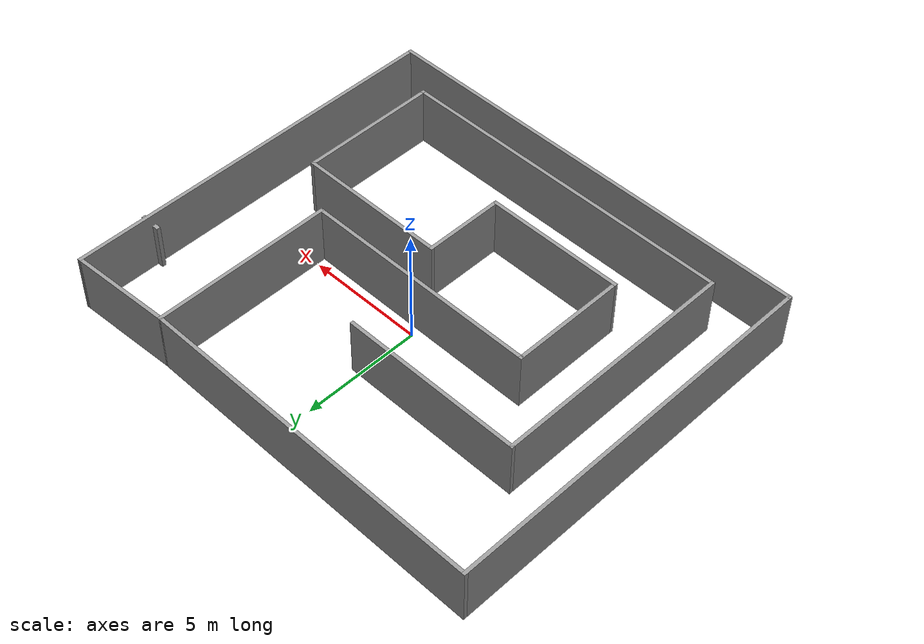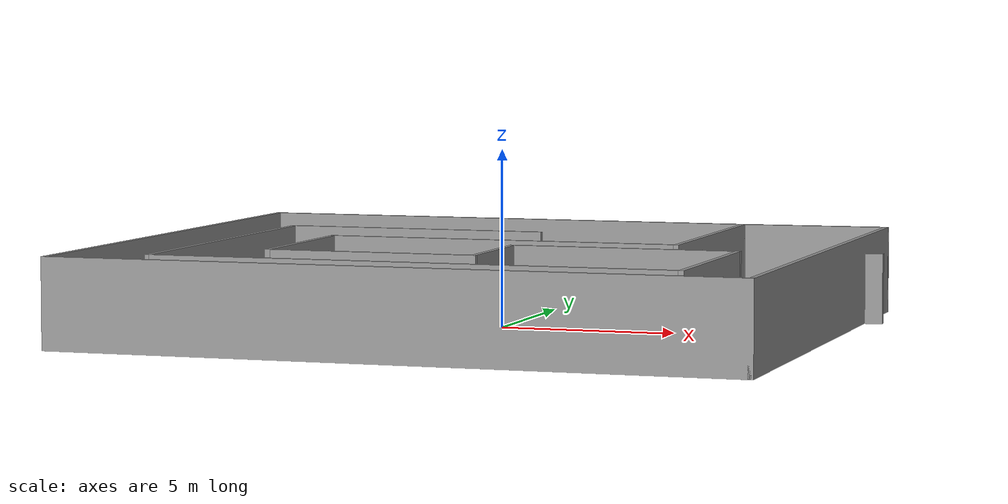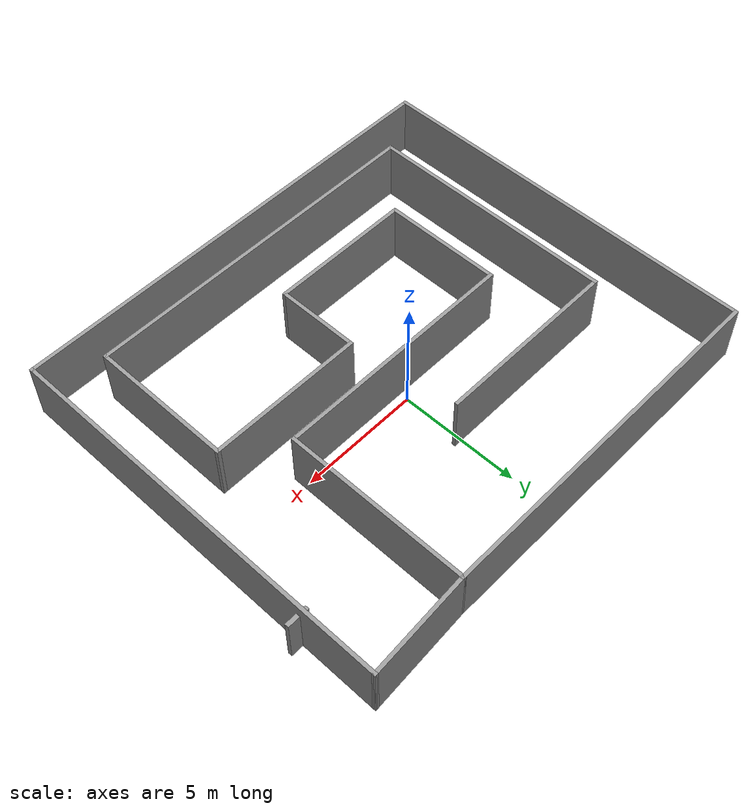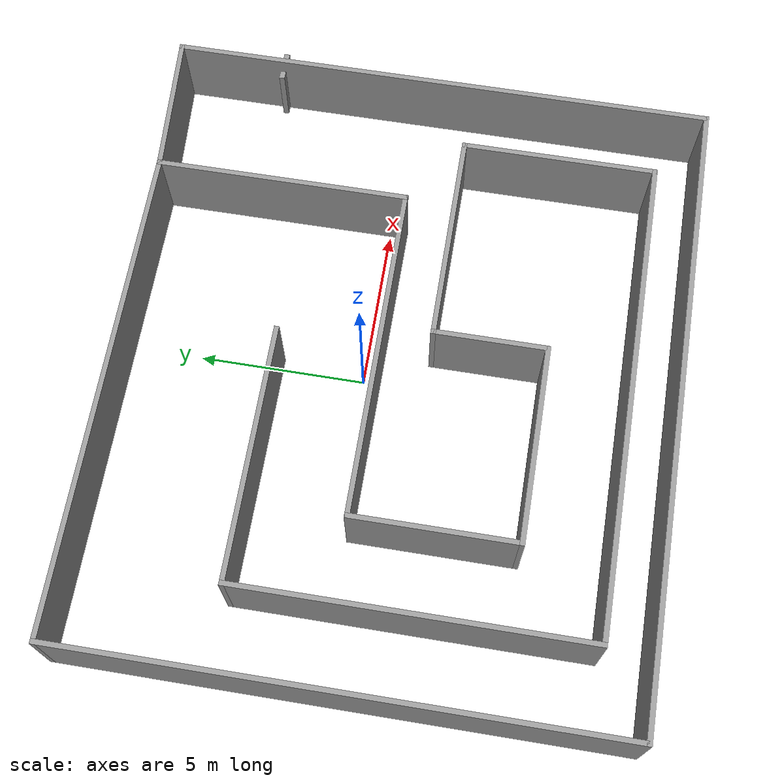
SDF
<?xml version='1.0'?>
<sdf version='1.7'>
  <model name='building.world'>
    <pose>-0.115612 -0.889439 0 0 -0 0</pose>
    <link name='Door_0'>
      <collision name='Door_0_Collision'>
        <geometry>
          <box>
            <size>0.9 0.17 2</size>
          </box>
        </geometry>
        <pose>0 0 1 0 -0 0</pose>
      </collision>
      <visual name='Door_0_Visual'>
        <pose>0 0 1 0 -0 0</pose>
        <geometry>
          <box>
            <size>0.9 0.17 2</size>
          </box>
        </geometry>
        <material>
          <script>
            <uri>file://media/materials/scripts/gazebo.material</uri>
            <name>Gazebo/Grey</name>
          </script>
        </material>
      </visual>
      <pose>9.67468 5.05359 0 0 -0 0</pose>
    </link>
    <link name='Wall_31'>
      <collision name='Wall_31_Collision'>
        <geometry>
          <box>
            <size>7.75 0.15 2.5</size>
          </box>
        </geometry>
        <pose>0 0 1.25 0 -0 0</pose>
      </collision>
      <visual name='Wall_31_Visual'>
        <pose>0 0 1.25 0 -0 0</pose>
        <geometry>
          <box>
            <size>7.75 0.15 2.5</size>
          </box>
        </geometry>
        <material>
          <script>
            <uri>file://media/materials/scripts/gazebo.material</uri>
            <name>Gazebo/Grey</name>
          </script>
          <ambient>1 1 1 1</ambient>
        </material>
        <meta>
          <layer>0</layer>
        </meta>
      </visual>
      <pose>-3.40214 3.44786 0 0 -0 3.14159</pose>
    </link>
    <link name='Wall_32'>
      <collision name='Wall_32_Collision'>
        <geometry>
          <box>
            <size>10.5 0.15 2.5</size>
          </box>
        </geometry>
        <pose>0 0 1.25 0 -0 0</pose>
      </collision>
      <visual name='Wall_32_Visual'>
        <pose>0 0 1.25 0 -0 0</pose>
        <geometry>
          <box>
            <size>10.5 0.15 2.5</size>
          </box>
        </geometry>
        <material>
          <script>
            <uri>file://media/materials/scripts/gazebo.material</uri>
            <name>Gazebo/Grey</name>
          </script>
          <ambient>1 1 1 1</ambient>
        </material>
        <meta>
          <layer>0</layer>
        </meta>
      </visual>
      <pose>-7.20214 -1.72714 0 0 -0 -1.5708</pose>
    </link>
    <link name='Wall_33'>
      <collision name='Wall_33_Collision'>
        <geometry>
          <box>
            <size>14.75 0.15 2.5</size>
          </box>
        </geometry>
        <pose>0 0 1.25 0 -0 0</pose>
      </collision>
      <visual name='Wall_33_Visual'>
        <pose>0 0 1.25 0 -0 0</pose>
        <geometry>
          <box>
            <size>14.75 0.15 2.5</size>
          </box>
        </geometry>
        <material>
          <script>
            <uri>file://media/materials/scripts/gazebo.material</uri>
            <name>Gazebo/Grey</name>
          </script>
          <ambient>1 1 1 1</ambient>
        </material>
        <meta>
          <layer>0</layer>
        </meta>
      </visual>
      <pose>0.097863 -6.90214 0 0 -0 0</pose>
    </link>
    <link name='Wall_34'>
      <collision name='Wall_34_Collision'>
        <geometry>
          <box>
            <size>6 0.15 2.5</size>
          </box>
        </geometry>
        <pose>0 0 1.25 0 -0 0</pose>
      </collision>
      <visual name='Wall_34_Visual'>
        <pose>0 0 1.25 0 -0 0</pose>
        <geometry>
          <box>
            <size>6 0.15 2.5</size>
          </box>
        </geometry>
        <material>
          <script>
            <uri>file://media/materials/scripts/gazebo.material</uri>
            <name>Gazebo/Grey</name>
          </script>
          <ambient>1 1 1 1</ambient>
        </material>
        <meta>
          <layer>0</layer>
        </meta>
      </visual>
      <pose>7.39786 -3.97714 0 0 -0 1.5708</pose>
    </link>
    <link name='Wall_35'>
      <collision name='Wall_35_Collision'>
        <geometry>
          <box>
            <size>6.5 0.15 2.5</size>
          </box>
        </geometry>
        <pose>0 0 1.25 0 -0 0</pose>
      </collision>
      <visual name='Wall_35_Visual'>
        <pose>0 0 1.25 0 -0 0</pose>
        <geometry>
          <box>
            <size>6.5 0.15 2.5</size>
          </box>
        </geometry>
        <material>
          <script>
            <uri>file://media/materials/scripts/gazebo.material</uri>
            <name>Gazebo/Grey</name>
          </script>
          <ambient>1 1 1 1</ambient>
        </material>
        <meta>
          <layer>0</layer>
        </meta>
      </visual>
      <pose>4.22286 -1.05214 0 0 -0 3.14159</pose>
    </link>
    <link name='Wall_36'>
      <collision name='Wall_36_Collision'>
        <geometry>
          <box>
            <size>3.5 0.15 2.5</size>
          </box>
        </geometry>
        <pose>0 0 1.25 0 -0 0</pose>
      </collision>
      <visual name='Wall_36_Visual'>
        <pose>0 0 1.25 0 -0 0</pose>
        <geometry>
          <box>
            <size>3.5 0.15 2.5</size>
          </box>
        </geometry>
        <material>
          <script>
            <uri>file://media/materials/scripts/gazebo.material</uri>
            <name>Gazebo/Grey</name>
          </script>
          <ambient>1 1 1 1</ambient>
        </material>
        <meta>
          <layer>0</layer>
        </meta>
      </visual>
      <pose>1.04786 -2.72714 0 0 -0 -1.5708</pose>
    </link>
    <link name='Wall_37'>
      <collision name='Wall_37_Collision'>
        <geometry>
          <box>
            <size>6 0.15 2.5</size>
          </box>
        </geometry>
        <pose>0 0 1.25 0 -0 0</pose>
      </collision>
      <visual name='Wall_37_Visual'>
        <pose>0 0 1.25 0 -0 0</pose>
        <geometry>
          <box>
            <size>6 0.15 2.5</size>
          </box>
        </geometry>
        <material>
          <script>
            <uri>file://media/materials/scripts/gazebo.material</uri>
            <name>Gazebo/Grey</name>
          </script>
          <ambient>1 1 1 1</ambient>
        </material>
        <meta>
          <layer>0</layer>
        </meta>
      </visual>
      <pose>-1.87714 -4.40214 0 0 -0 3.14159</pose>
    </link>
    <link name='Wall_38'>
      <collision name='Wall_38_Collision'>
        <geometry>
          <box>
            <size>5 0.15 2.5</size>
          </box>
        </geometry>
        <pose>0 0 1.25 0 -0 0</pose>
      </collision>
      <visual name='Wall_38_Visual'>
        <pose>0 0 1.25 0 -0 0</pose>
        <geometry>
          <box>
            <size>5 0.15 2.5</size>
          </box>
        </geometry>
        <material>
          <script>
            <uri>file://media/materials/scripts/gazebo.material</uri>
            <name>Gazebo/Grey</name>
          </script>
          <ambient>1 1 1 1</ambient>
        </material>
        <meta>
          <layer>0</layer>
        </meta>
      </visual>
      <pose>-4.80214 -1.97714 0 0 -0 1.5708</pose>
    </link>
    <link name='Wall_39'>
      <collision name='Wall_39_Collision'>
        <geometry>
          <box>
            <size>10.25 0.15 2.5</size>
          </box>
        </geometry>
        <pose>0 0 1.25 0 -0 0</pose>
      </collision>
      <visual name='Wall_39_Visual'>
        <pose>0 0 1.25 0 -0 0</pose>
        <geometry>
          <box>
            <size>10.25 0.15 2.5</size>
          </box>
        </geometry>
        <material>
          <script>
            <uri>file://media/materials/scripts/gazebo.material</uri>
            <name>Gazebo/Grey</name>
          </script>
          <ambient>1 1 1 1</ambient>
        </material>
        <meta>
          <layer>0</layer>
        </meta>
      </visual>
      <pose>0.247863 0.447863 0 0 -0 0</pose>
    </link>
    <link name='Wall_40'>
      <collision name='Wall_40_Collision'>
        <geometry>
          <box>
            <size>7.75 0.15 2.5</size>
          </box>
        </geometry>
        <pose>0 0 1.25 0 -0 0</pose>
      </collision>
      <visual name='Wall_40_Visual'>
        <pose>0 0 1.25 0 -0 0</pose>
        <geometry>
          <box>
            <size>7.75 0.15 2.5</size>
          </box>
        </geometry>
        <material>
          <script>
            <uri>file://media/materials/scripts/gazebo.material</uri>
            <name>Gazebo/Grey</name>
          </script>
          <ambient>1 1 1 1</ambient>
        </material>
        <meta>
          <layer>0</layer>
        </meta>
      </visual>
      <pose>5.29786 4.24786 0 0 -0 1.5708</pose>
    </link>
    <link name='Wall_41'>
      <collision name='Wall_41_Collision'>
        <geometry>
          <box>
            <size>15 0.15 2.5</size>
          </box>
        </geometry>
        <pose>0 0 1.25 0 -0 0</pose>
      </collision>
      <visual name='Wall_41_Visual'>
        <pose>0 0 1.25 0 -0 0</pose>
        <geometry>
          <box>
            <size>15 0.15 2.5</size>
          </box>
        </geometry>
        <material>
          <script>
            <uri>file://media/materials/scripts/gazebo.material</uri>
            <name>Gazebo/Grey</name>
          </script>
          <ambient>1 1 1 1</ambient>
        </material>
        <meta>
          <layer>0</layer>
        </meta>
      </visual>
      <pose>-2.12714 8.04786 0 0 -0 3.14159</pose>
    </link>
    <link name='Wall_42'>
      <collision name='Wall_42_Collision'>
        <geometry>
          <box>
            <size>16.5 0.15 2.5</size>
          </box>
        </geometry>
        <pose>0 0 1.25 0 -0 0</pose>
      </collision>
      <visual name='Wall_42_Visual'>
        <pose>0 0 1.25 0 -0 0</pose>
        <geometry>
          <box>
            <size>16.5 0.15 2.5</size>
          </box>
        </geometry>
        <material>
          <script>
            <uri>file://media/materials/scripts/gazebo.material</uri>
            <name>Gazebo/Grey</name>
          </script>
          <ambient>1 1 1 1</ambient>
        </material>
        <meta>
          <layer>0</layer>
        </meta>
      </visual>
      <pose>-9.55214 -0.127137 0 0 -0 -1.5708</pose>
    </link>
    <link name='Wall_43'>
      <collision name='Wall_43_Collision'>
        <geometry>
          <box>
            <size>19.25 0.15 2.5</size>
          </box>
        </geometry>
        <pose>0 0 1.25 0 -0 0</pose>
      </collision>
      <visual name='Wall_43_Visual'>
        <pose>0 0 1.25 0 -0 0</pose>
        <geometry>
          <box>
            <size>19.25 0.15 2.5</size>
          </box>
        </geometry>
        <material>
          <script>
            <uri>file://media/materials/scripts/gazebo.material</uri>
            <name>Gazebo/Grey</name>
          </script>
          <ambient>1 1 1 1</ambient>
        </material>
        <meta>
          <layer>0</layer>
        </meta>
      </visual>
      <pose>-0.002137 -8.30214 0 0 -0 0</pose>
    </link>
    <link name='Wall_44'>
      <collision name='Wall_44_Collision'>
        <geometry>
          <box>
            <size>16.75 0.15 2.5</size>
          </box>
        </geometry>
        <pose>0 0 1.25 0 -0 0</pose>
      </collision>
      <visual name='Wall_44_Visual'>
        <pose>0 0 1.25 0 -0 0</pose>
        <geometry>
          <box>
            <size>16.75 0.15 2.5</size>
          </box>
        </geometry>
        <material>
          <script>
            <uri>file://media/materials/scripts/gazebo.material</uri>
            <name>Gazebo/Grey</name>
          </script>
          <ambient>1 1 1 1</ambient>
        </material>
        <meta>
          <layer>0</layer>
        </meta>
      </visual>
      <pose>9.54786 -0.002137 0 0 -0 1.5708</pose>
    </link>
    <link name='Wall_45'>
      <collision name='Wall_45_Collision'>
        <geometry>
          <box>
            <size>4.40735 0.15 2.5</size>
          </box>
        </geometry>
        <pose>0 0 1.25 0 -0 0</pose>
      </collision>
      <visual name='Wall_45_Visual'>
        <pose>0 0 1.25 0 -0 0</pose>
        <geometry>
          <box>
            <size>4.40735 0.15 2.5</size>
          </box>
        </geometry>
        <material>
          <script>
            <uri>file://media/materials/scripts/gazebo.material</uri>
            <name>Gazebo/Grey</name>
          </script>
          <ambient>1 1 1 1</ambient>
        </material>
        <meta>
          <layer>0</layer>
        </meta>
      </visual>
      <pose>7.42286 8.17286 0 0 -0 -3.08284</pose>
    </link>
    <link name='Wall_46'>
      <collision name='Wall_46_Collision'>
        <geometry>
          <box>
            <size>0.15 0.15 2.5</size>
          </box>
        </geometry>
        <pose>0 0 1.25 0 -0 0</pose>
      </collision>
      <visual name='Wall_46_Visual'>
        <pose>0 0 1.25 0 -0 0</pose>
        <geometry>
          <box>
            <size>0.15 0.15 2.5</size>
          </box>
        </geometry>
        <material>
          <script>
            <uri>file://media/materials/scripts/gazebo.material</uri>
            <name>Gazebo/Grey</name>
          </script>
          <ambient>1 1 1 1</ambient>
        </material>
        <meta>
          <layer>0</layer>
        </meta>
      </visual>
      <pose>5.29786 8.04786 0 0 -0 0</pose>
    </link>
    <link name='Wall_47'>
      <collision name='Wall_47_Collision'>
        <geometry>
          <box>
            <size>0.16 0.15 2.5</size>
          </box>
        </geometry>
        <pose>0 0 1.25 0 -0 0</pose>
      </collision>
      <visual name='Wall_47_Visual'>
        <pose>0 0 1.25 0 -0 0</pose>
        <geometry>
          <box>
            <size>0.16 0.15 2.5</size>
          </box>
        </geometry>
        <material>
          <script>
            <uri>file://media/materials/scripts/gazebo.material</uri>
            <name>Gazebo/Grey</name>
          </script>
          <ambient>1 1 1 1</ambient>
        </material>
        <meta>
          <layer>0</layer>
        </meta>
      </visual>
      <pose>5.30286 8.04786 0 0 -0 0</pose>
    </link>
    <static>1</static>
  </model>
</sdf>
